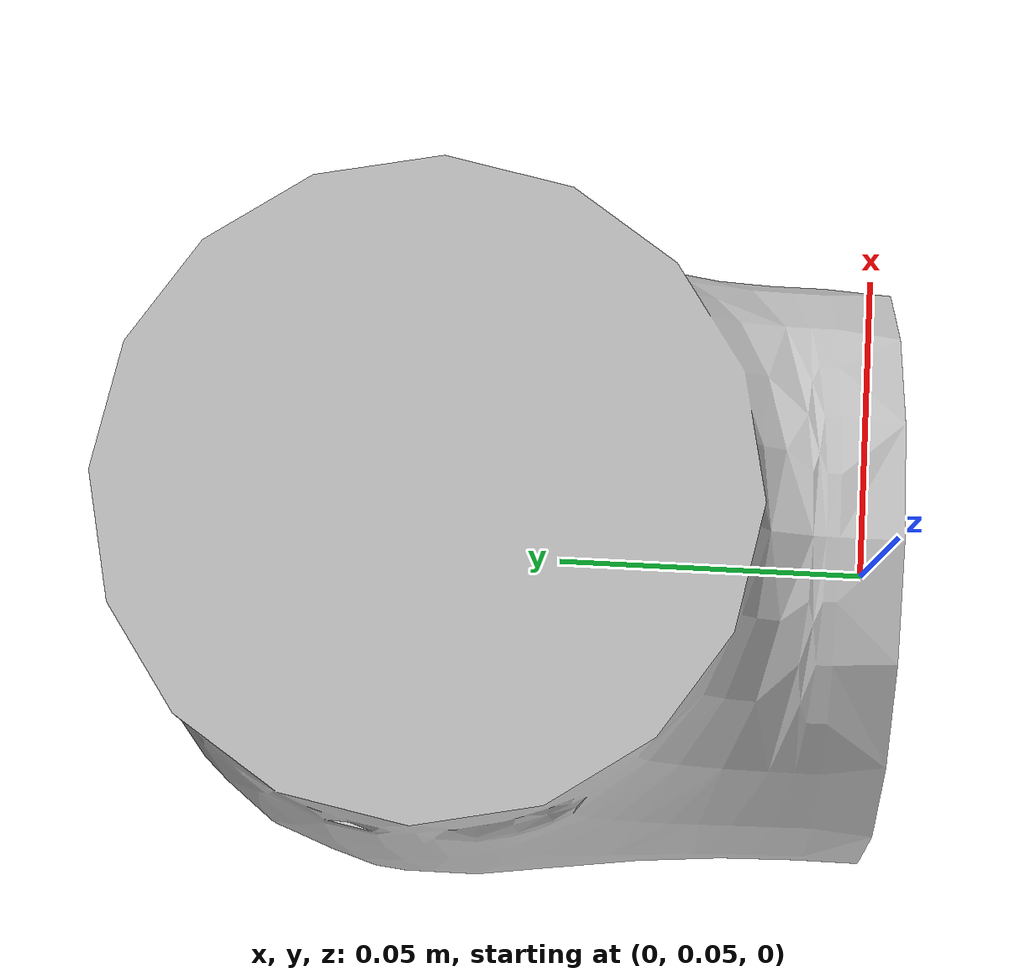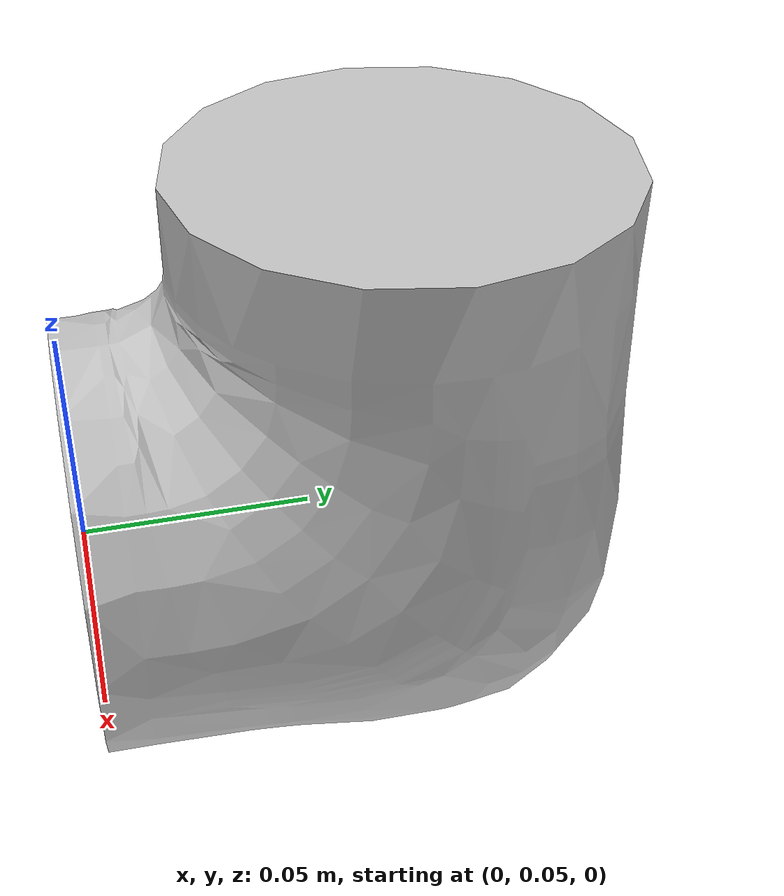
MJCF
<mujoco model="J5">
  <default>
    <default class="visual">
      <geom group="2" type="mesh" contype="0" conaffinity="0"/>
    </default>
    <default class="collision">
      <geom group="3" type="mesh"/>
    </default>
  </default>
  <asset>
    <material name="material_m5_0" specular="0.20000000000000004" shininess="1.0" rgba="0.75294118 0.75294118 0.75294118 1.0"/>
    <mesh file="J5.obj"/>
  </asset>
  <worldbody>
    <body name="J5">
      <geom material="material_m5_0" mesh="J5" class="visual"/>
      <geom mesh="J5" class="collision"/>
    </body>
  </worldbody>
</mujoco>
